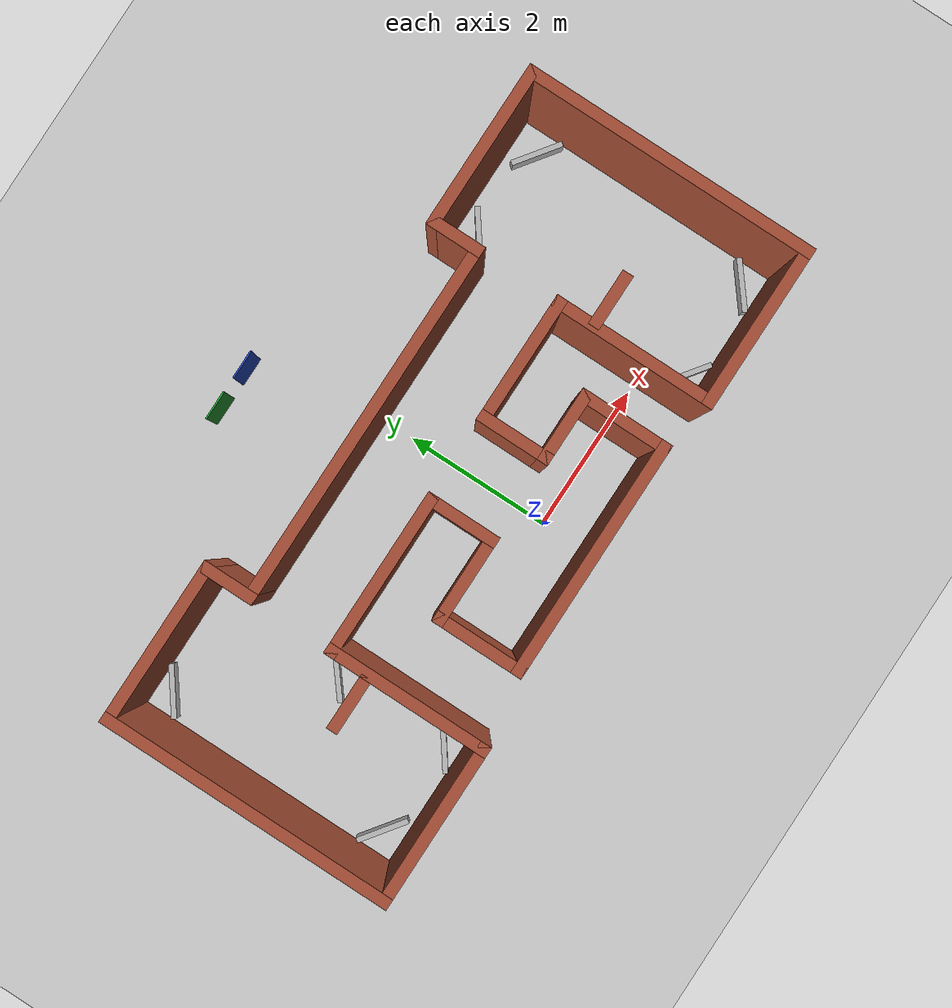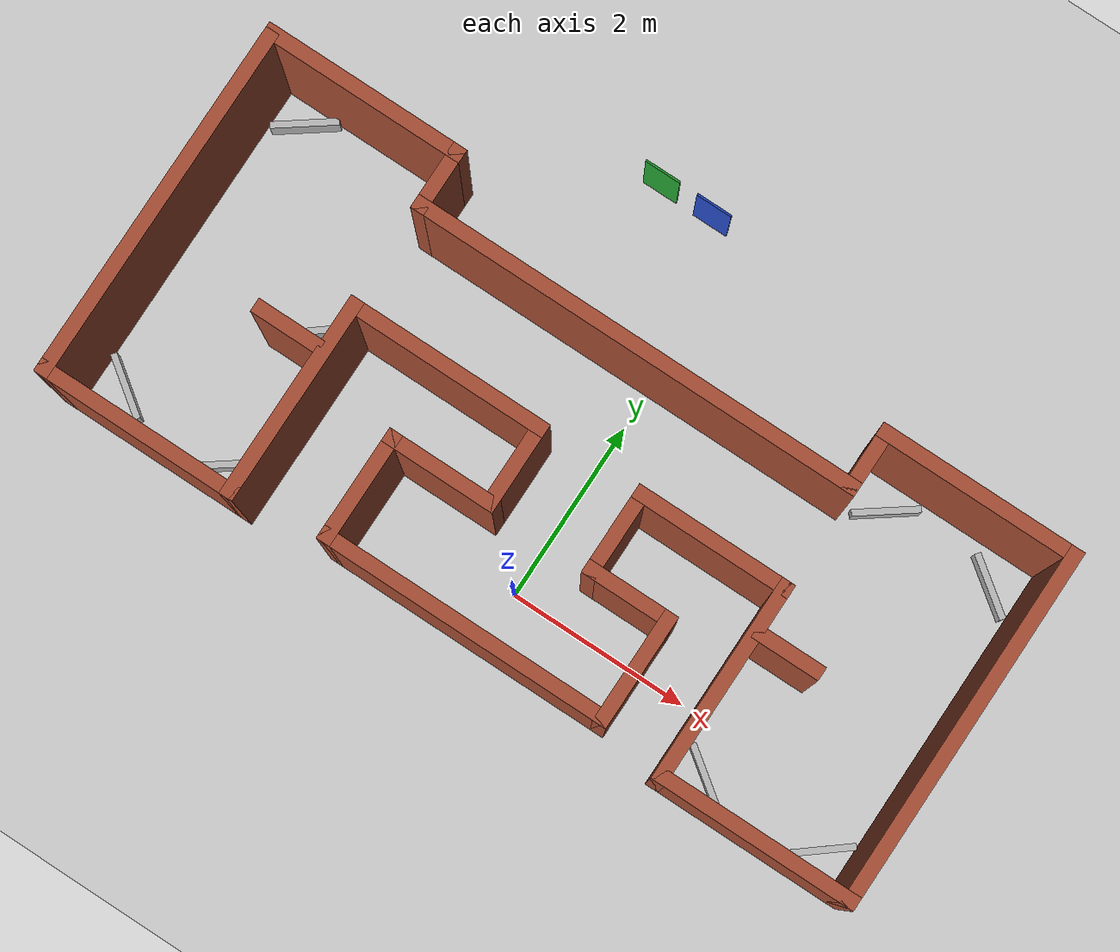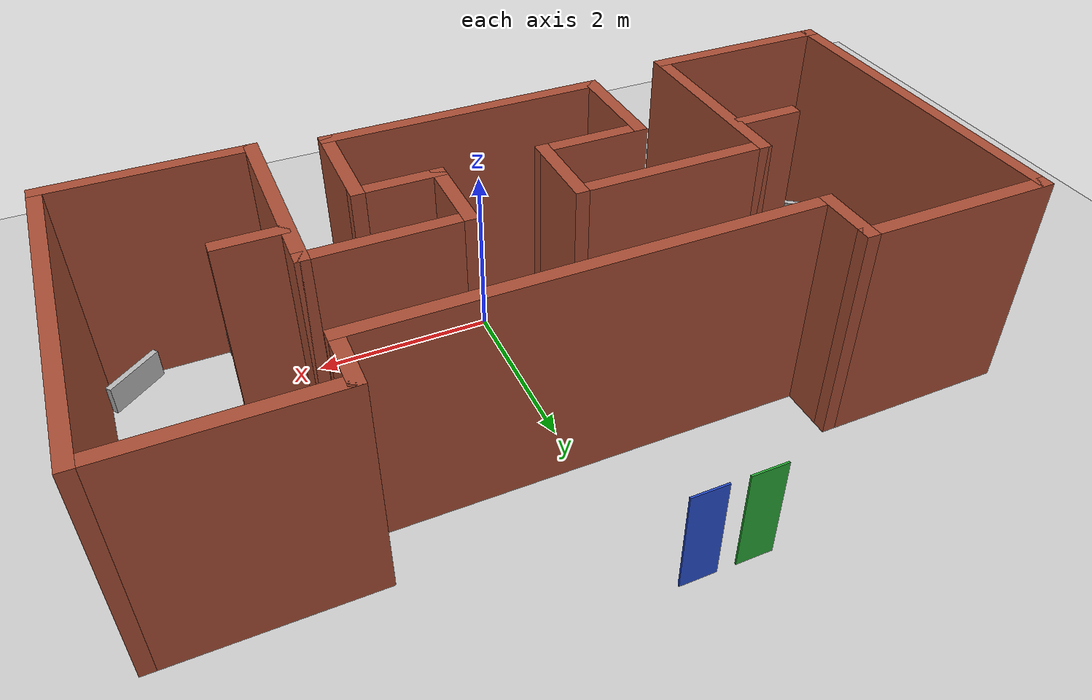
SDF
<sdf version="1.6">
 <world name="default">
  <light name="sun" type="directional">
   <pose>0 0 10 0 -0 0</pose>
   <diffuse>0.8 0.8 0.8 1</diffuse>
   <specular>0.2 0.2 0.2 1</specular>
   <attenuation>
    <range>1000</range>
    <constant>0.9</constant>
    <linear>0.01</linear>
    <quadratic>0.001</quadratic>
   </attenuation>
   <direction>-0.5 0.1 -0.9</direction>
  </light>
  <model name="ground_plane">
   <static>1</static>
   <link name="link">
    <collision name="collision">
     <geometry><plane><normal>0 0 1</normal><size>100 100</size></plane></geometry>
     <surface>
      <contact><collide_bitmask>65535</collide_bitmask></contact>
      <friction><ode><mu>100</mu><mu2>50</mu2></ode></friction>
     </surface>
    </collision>
    <visual name="visual">
     <cast_shadows>0</cast_shadows>
     <geometry><plane><normal>0 0 1</normal><size>100 100</size></plane></geometry>
     <material>
      <script><uri>file://media/materials/scripts/gazebo.material</uri><name>Gazebo/Grey</name></script>
     </material>
    </visual>
   </link>
  </model>
  <gravity>0 0 -9.8</gravity>
  <magnetic_field>6e-06 2.3e-05 -4.2e-05</magnetic_field>
  <atmosphere type="adiabatic"/>
  <physics name="default_physics" default="0" type="ode">
   <max_step_size>0.001</max_step_size>
   <real_time_factor>1</real_time_factor>
   <real_time_update_rate>1000</real_time_update_rate>
  </physics>
  <scene><ambient>0.4 0.4 0.4 1</ambient><background>0.7 0.7 0.7 1</background><shadows>1</shadows></scene>
  <audio><device>default</device></audio>
  <spherical_coordinates>
   <surface_model>EARTH_WGS84</surface_model>
   <latitude_deg>0</latitude_deg>
   <longitude_deg>0</longitude_deg>
   <elevation>0</elevation>
   <heading_deg>0</heading_deg>
  </spherical_coordinates>
  <model name="pre_third_test">
   <pose>-0.23164 1.14808 0 0 -0 0</pose>
   <link name="Wall_1">
    <collision name="Wall_1_Collision">
     <geometry><box><size>1.25 0.15 2.5</size></box></geometry>
     <pose>0 0 1.25 0 -0 0</pose>
    </collision>
    <visual name="Wall_1_Visual">
     <pose>0 0 1.25 0 -0 0</pose>
     <geometry><box><size>1.25 0.15 2.5</size></box></geometry>
     <material>
      <script><uri>file://media/materials/scripts/gazebo.material</uri><name>Gazebo/Bricks</name></script>
      <ambient>1 1 1 1</ambient>
     </material>
     <meta><layer>0</layer></meta>
    </visual>
    <pose>1.675 -1.225 0 0 -0 1.5708</pose>
   </link>
   <link name="Wall_10">
    <collision name="Wall_10_Collision">
     <geometry><box><size>5 0.15 2.5</size></box></geometry>
     <pose>0 0 1.25 0 -0 0</pose>
    </collision>
    <visual name="Wall_10_Visual">
     <pose>0 0 1.25 0 -0 0</pose>
     <geometry><box><size>5 0.15 2.5</size></box></geometry>
     <material>
      <script><uri>file://media/materials/scripts/gazebo.material</uri><name>Gazebo/Bricks</name></script>
      <ambient>1 1 1 1</ambient>
     </material>
     <meta><layer>0</layer></meta>
    </visual>
    <pose>0 1.325 0 0 -0 3.14159</pose>
   </link>
   <link name="Wall_11">
    <collision name="Wall_11_Collision">
     <geometry><box><size>0.75 0.15 2.5</size></box></geometry>
     <pose>0 0 1.25 0 -0 0</pose>
    </collision>
    <visual name="Wall_11_Visual">
     <pose>0 0 1.25 0 -0 0</pose>
     <geometry><box><size>0.75 0.15 2.5</size></box></geometry>
     <material>
      <script><uri>file://media/materials/scripts/gazebo.material</uri><name>Gazebo/Bricks</name></script>
      <ambient>1 1 1 1</ambient>
     </material>
     <meta><layer>0</layer></meta>
    </visual>
    <pose>-2.425 1.625 0 0 -0 1.5708</pose>
   </link>
   <link name="Wall_12">
    <collision name="Wall_12_Collision">
     <geometry><box><size>2.25 0.15 2.5</size></box></geometry>
     <pose>0 0 1.25 0 -0 0</pose>
    </collision>
    <visual name="Wall_12_Visual">
     <pose>0 0 1.25 0 -0 0</pose>
     <geometry><box><size>2.25 0.15 2.5</size></box></geometry>
     <material>
      <script><uri>file://media/materials/scripts/gazebo.material</uri><name>Gazebo/Bricks</name></script>
      <ambient>1 1 1 1</ambient>
     </material>
     <meta><layer>0</layer></meta>
    </visual>
    <pose>-3.475 1.925 0 0 -0 3.14159</pose>
   </link>
   <link name="Wall_13">
    <collision name="Wall_13_Collision">
     <geometry><box><size>4 0.15 2.5</size></box></geometry>
     <pose>0 0 1.25 0 -0 0</pose>
    </collision>
    <visual name="Wall_13_Visual">
     <pose>0 0 1.25 0 -0 0</pose>
     <geometry><box><size>4 0.15 2.5</size></box></geometry>
     <material>
      <script><uri>file://media/materials/scripts/gazebo.material</uri><name>Gazebo/Bricks</name></script>
      <ambient>1 1 1 1</ambient>
     </material>
     <meta><layer>0</layer></meta>
    </visual>
    <pose>-4.525 0 0 0 -0 -1.5708</pose>
   </link>
   <link name="Wall_14">
    <collision name="Wall_14_Collision">
     <geometry><box><size>2.25 0.15 2.5</size></box></geometry>
     <pose>0 0 1.25 0 -0 0</pose>
    </collision>
    <visual name="Wall_14_Visual">
     <pose>0 0 1.25 0 -0 0</pose>
     <geometry><box><size>2.25 0.15 2.5</size></box></geometry>
     <material>
      <script><uri>file://media/materials/scripts/gazebo.material</uri><name>Gazebo/Bricks</name></script>
      <ambient>1 1 1 1</ambient>
     </material>
     <meta><layer>0</layer></meta>
    </visual>
    <pose>-3.475 -1.925 0 0 -0 0</pose>
   </link>
   <link name="Wall_15">
    <collision name="Wall_15_Collision">
     <geometry><box><size>2.25 0.15 2.5</size></box></geometry>
     <pose>0 0 1.25 0 -0 0</pose>
    </collision>
    <visual name="Wall_15_Visual">
     <pose>0 0 1.25 0 -0 0</pose>
     <geometry><box><size>2.25 0.15 2.5</size></box></geometry>
     <material>
      <script><uri>file://media/materials/scripts/gazebo.material</uri><name>Gazebo/Bricks</name></script>
      <ambient>1 1 1 1</ambient>
     </material>
     <meta><layer>0</layer></meta>
    </visual>
    <pose>-2.425 -0.875 0 0 -0 1.5708</pose>
   </link>
   <link name="Wall_16">
    <collision name="Wall_16_Collision">
     <geometry><box><size>2.25 0.15 2.5</size></box></geometry>
     <pose>0 0 1.25 0 -0 0</pose>
    </collision>
    <visual name="Wall_16_Visual">
     <pose>0 0 1.25 0 -0 0</pose>
     <geometry><box><size>2.25 0.15 2.5</size></box></geometry>
     <material>
      <script><uri>file://media/materials/scripts/gazebo.material</uri><name>Gazebo/Bricks</name></script>
      <ambient>1 1 1 1</ambient>
     </material>
     <meta><layer>0</layer></meta>
    </visual>
    <pose>-1.375 0.175 0 0 -0 0</pose>
   </link>
   <link name="Wall_17">
    <collision name="Wall_17_Collision">
     <geometry><box><size>1 0.15 2.5</size></box></geometry>
     <pose>0 0 1.25 0 -0 0</pose>
    </collision>
    <visual name="Wall_17_Visual">
     <pose>0 0 1.25 0 -0 0</pose>
     <geometry><box><size>1 0.15 2.5</size></box></geometry>
     <material>
      <script><uri>file://media/materials/scripts/gazebo.material</uri><name>Gazebo/Bricks</name></script>
      <ambient>1 1 1 1</ambient>
     </material>
     <meta><layer>0</layer></meta>
    </visual>
    <pose>-0.325 -0.25 0 0 -0 -1.5708</pose>
   </link>
   <link name="Wall_18">
    <collision name="Wall_18_Collision">
     <geometry><box><size>1.25 0.15 2.5</size></box></geometry>
     <pose>0 0 1.25 0 -0 0</pose>
    </collision>
    <visual name="Wall_18_Visual">
     <pose>0 0 1.25 0 -0 0</pose>
     <geometry><box><size>1.25 0.15 2.5</size></box></geometry>
     <material>
      <script><uri>file://media/materials/scripts/gazebo.material</uri><name>Gazebo/Bricks</name></script>
      <ambient>1 1 1 1</ambient>
     </material>
     <meta><layer>0</layer></meta>
    </visual>
    <pose>-0.875 -0.675 0 0 -0 3.14159</pose>
   </link>
   <link name="Wall_19">
    <collision name="Wall_19_Collision">
     <geometry><box><size>1.25 0.15 2.5</size></box></geometry>
     <pose>0 0 1.25 0 -0 0</pose>
    </collision>
    <visual name="Wall_19_Visual">
     <pose>0 0 1.25 0 -0 0</pose>
     <geometry><box><size>1.25 0.15 2.5</size></box></geometry>
     <material>
      <script><uri>file://media/materials/scripts/gazebo.material</uri><name>Gazebo/Bricks</name></script>
      <ambient>1 1 1 1</ambient>
     </material>
     <meta><layer>0</layer></meta>
    </visual>
    <pose>-1.425 -1.225 0 0 -0 -1.5708</pose>
   </link>
   <link name="Wall_2">
    <collision name="Wall_2_Collision">
     <geometry><box><size>1 0.15 2.5</size></box></geometry>
     <pose>0 0 1.25 0 -0 0</pose>
    </collision>
    <visual name="Wall_2_Visual">
     <pose>0 0 1.25 0 -0 0</pose>
     <geometry><box><size>1 0.15 2.5</size></box></geometry>
     <material>
      <script><uri>file://media/materials/scripts/gazebo.material</uri><name>Gazebo/Bricks</name></script>
      <ambient>1 1 1 1</ambient>
     </material>
     <meta><layer>0</layer></meta>
    </visual>
    <pose>1.25 -0.675 0 0 -0 3.14159</pose>
   </link>
   <link name="Wall_21">
    <collision name="Wall_21_Collision">
     <geometry><box><size>3.25 0.15 2.5</size></box></geometry>
     <pose>0 0 1.25 0 -0 0</pose>
    </collision>
    <visual name="Wall_21_Visual">
     <pose>0 0 1.25 0 -0 0</pose>
     <geometry><box><size>3.25 0.15 2.5</size></box></geometry>
     <material>
      <script><uri>file://media/materials/scripts/gazebo.material</uri><name>Gazebo/Bricks</name></script>
      <ambient>1 1 1 1</ambient>
     </material>
     <meta><layer>0</layer></meta>
    </visual>
    <pose>0.125 -1.775 0 0 -0 0</pose>
   </link>
   <link name="Wall_23">
    <collision name="Wall_23_Collision">
     <geometry><box><size>0.75 0.15 2.5</size></box></geometry>
     <pose>0 0 1.25 0 -0 0</pose>
    </collision>
    <visual name="Wall_23_Visual">
     <pose>0 0 1.25 0 -0 0</pose>
     <geometry><box><size>0.75 0.15 2.5</size></box></geometry>
     <material>
      <script><uri>file://media/materials/scripts/gazebo.material</uri><name>Gazebo/Bricks</name></script>
      <ambient>1 1 1 1</ambient>
     </material>
     <meta><layer>0</layer></meta>
    </visual>
    <pose>-2.83461 -0.332543 0 0 -0 3.14159</pose>
   </link>
   <link name="Wall_25">
    <collision name="Wall_25_Collision">
     <geometry><box><size>0.75 0.15 2.5</size></box></geometry>
     <pose>0 0 1.25 0 -0 0</pose>
    </collision>
    <visual name="Wall_25_Visual">
     <pose>0 0 1.25 0 -0 0</pose>
     <geometry><box><size>0.75 0.15 2.5</size></box></geometry>
     <material>
      <script><uri>file://media/materials/scripts/gazebo.material</uri><name>Gazebo/Bricks</name></script>
      <ambient>1 1 1 1</ambient>
     </material>
     <meta><layer>0</layer></meta>
    </visual>
    <pose>2.78473 -0.309413 0 0 -0 0</pose>
   </link>
   <link name="Wall_3">
    <collision name="Wall_3_Collision">
     <geometry><box><size>1 0.15 2.5</size></box></geometry>
     <pose>0 0 1.25 0 -0 0</pose>
    </collision>
    <visual name="Wall_3_Visual">
     <pose>0 0 1.25 0 -0 0</pose>
     <geometry><box><size>1 0.15 2.5</size></box></geometry>
     <material>
      <script><uri>file://media/materials/scripts/gazebo.material</uri><name>Gazebo/Bricks</name></script>
      <ambient>1 1 1 1</ambient>
     </material>
     <meta><layer>0</layer></meta>
    </visual>
    <pose>0.825 -0.25 0 0 -0 1.5708</pose>
   </link>
   <link name="Wall_4">
    <collision name="Wall_4_Collision">
     <geometry><box><size>1.75 0.15 2.5</size></box></geometry>
     <pose>0 0 1.25 0 -0 0</pose>
    </collision>
    <visual name="Wall_4_Visual">
     <pose>0 0 1.25 0 -0 0</pose>
     <geometry><box><size>1.75 0.15 2.5</size></box></geometry>
     <material>
      <script><uri>file://media/materials/scripts/gazebo.material</uri><name>Gazebo/Bricks</name></script>
      <ambient>1 1 1 1</ambient>
     </material>
     <meta><layer>0</layer></meta>
    </visual>
    <pose>1.625 0.175 0 0 -0 0</pose>
   </link>
   <link name="Wall_5">
    <collision name="Wall_5_Collision">
     <geometry><box><size>2.25 0.15 2.5</size></box></geometry>
     <pose>0 0 1.25 0 -0 0</pose>
    </collision>
    <visual name="Wall_5_Visual">
     <pose>0 0 1.25 0 -0 0</pose>
     <geometry><box><size>2.25 0.15 2.5</size></box></geometry>
     <material>
      <script><uri>file://media/materials/scripts/gazebo.material</uri><name>Gazebo/Bricks</name></script>
      <ambient>1 1 1 1</ambient>
     </material>
     <meta><layer>0</layer></meta>
    </visual>
    <pose>2.425 -0.875 0 0 -0 -1.5708</pose>
   </link>
   <link name="Wall_6">
    <collision name="Wall_6_Collision">
     <geometry><box><size>2.25 0.15 2.5</size></box></geometry>
     <pose>0 0 1.25 0 -0 0</pose>
    </collision>
    <visual name="Wall_6_Visual">
     <pose>0 0 1.25 0 -0 0</pose>
     <geometry><box><size>2.25 0.15 2.5</size></box></geometry>
     <material>
      <script><uri>file://media/materials/scripts/gazebo.material</uri><name>Gazebo/Bricks</name></script>
      <ambient>1 1 1 1</ambient>
     </material>
     <meta><layer>0</layer></meta>
    </visual>
    <pose>3.475 -1.925 0 0 -0 0</pose>
   </link>
   <link name="Wall_7">
    <collision name="Wall_7_Collision">
     <geometry><box><size>4 0.15 2.5</size></box></geometry>
     <pose>0 0 1.25 0 -0 0</pose>
    </collision>
    <visual name="Wall_7_Visual">
     <pose>0 0 1.25 0 -0 0</pose>
     <geometry><box><size>4 0.15 2.5</size></box></geometry>
     <material>
      <script><uri>file://media/materials/scripts/gazebo.material</uri><name>Gazebo/Bricks</name></script>
      <ambient>1 1 1 1</ambient>
     </material>
     <meta><layer>0</layer></meta>
    </visual>
    <pose>4.525 0 0 0 -0 1.5708</pose>
   </link>
   <link name="Wall_8">
    <collision name="Wall_8_Collision">
     <geometry><box><size>2.25 0.15 2.5</size></box></geometry>
     <pose>0 0 1.25 0 -0 0</pose>
    </collision>
    <visual name="Wall_8_Visual">
     <pose>0 0 1.25 0 -0 0</pose>
     <geometry><box><size>2.25 0.15 2.5</size></box></geometry>
     <material>
      <script><uri>file://media/materials/scripts/gazebo.material</uri><name>Gazebo/Bricks</name></script>
      <ambient>1 1 1 1</ambient>
     </material>
     <meta><layer>0</layer></meta>
    </visual>
    <pose>3.475 1.925 0 0 -0 3.14159</pose>
   </link>
   <link name="Wall_9">
    <collision name="Wall_9_Collision">
     <geometry><box><size>0.75 0.15 2.5</size></box></geometry>
     <pose>0 0 1.25 0 -0 0</pose>
    </collision>
    <visual name="Wall_9_Visual">
     <pose>0 0 1.25 0 -0 0</pose>
     <geometry><box><size>0.75 0.15 2.5</size></box></geometry>
     <material>
      <script><uri>file://media/materials/scripts/gazebo.material</uri><name>Gazebo/Bricks</name></script>
      <ambient>1 1 1 1</ambient>
     </material>
     <meta><layer>0</layer></meta>
    </visual>
    <pose>2.425 1.625 0 0 -0 -1.5708</pose>
   </link>
   <static>1</static>
  </model>
  <model name="green_box">
   <static>1</static>
   <link name="box">
    <pose>0 0 0.6 0 -0 0</pose>
    <collision name="collision"><geometry><box><size>0.4 0.02 1.2</size></box></geometry></collision>
    <visual name="visual">
     <geometry><box><size>0.4 0.02 1.2</size></box></geometry>
     <material>
      <script>
       <uri>model://green_box/materials/scripts</uri>
       <uri>model://green_box/materials/textures</uri>
       <name>green_box</name>
      </script>
     </material>
    </visual>
   </link>
   <pose>-1.02075 4.2099 0 0 -0 0</pose>
  </model>
  <model name="blue_box">
   <static>1</static>
   <link name="box">
    <pose>0 0 0.6 0 -0 0</pose>
    <collision name="collision"><geometry><box><size>0.4 0.02 1.2</size></box></geometry></collision>
    <visual name="visual">
     <geometry><box><size>0.4 0.02 1.2</size></box></geometry>
     <material>
      <script>
       <uri>model://blue_box/materials/scripts</uri>
       <uri>model://blue_box/materials/textures</uri>
       <name>blue_box</name>
      </script>
     </material>
    </visual>
   </link>
   <pose>-0.417842 4.20596 0 0 -0 0</pose>
  </model>
  <model name="bicycle_picture">
   <static>1</static>
   <link name="box">
    <collision name="collision"><geometry><box><size>0.55 0.075 0.2</size></box></geometry></collision>
    <visual name="visual">
     <geometry><box><size>0.7 0.07 0.35</size></box></geometry>
     <material>
      <script>
       <uri>model://bicycle_picture/materials/scripts</uri>
       <uri>model://bicycle_picture/materials/textures</uri>
       <name>bicycle_picture</name>
      </script>
     </material>
    </visual>
   </link>
   <pose>-4.34885 2.78076 0.175476 0 -0 0.632853</pose>
  </model>
  <model name="boat_picture">
   <static>1</static>
   <link name="box">
    <collision name="collision"><geometry><box><size>0.55 0.075 0.2</size></box></geometry></collision>
    <visual name="visual">
     <geometry><box><size>0.7 0.07 0.35</size></box></geometry>
     <material>
      <script>
       <uri>model://boat_picture/materials/scripts</uri>
       <uri>model://boat_picture/materials/textures</uri>
       <name>boat_picture</name>
      </script>
     </material>
    </visual>
   </link>
   <pose>-3.04089 1.14641 0.152848 0 -0 0.679684</pose>
  </model>
  <model name="bicycle_picture_clone">
   <static>1</static>
   <link name="box">
    <collision name="collision"><geometry><box><size>0.55 0.075 0.2</size></box></geometry></collision>
    <visual name="visual">
     <geometry><box><size>0.7 0.07 0.35</size></box></geometry>
     <material>
      <script>
       <uri>model://bicycle_picture/materials/scripts</uri>
       <uri>model://bicycle_picture/materials/textures</uri>
       <name>bicycle_picture</name>
      </script>
     </material>
    </visual>
   </link>
   <pose>-3.05274 -0.474216 0.175476 0 -0 0.632853</pose>
  </model>
  <model name="bicycle_picture_clone_0">
   <static>1</static>
   <link name="box">
    <collision name="collision"><geometry><box><size>0.55 0.075 0.2</size></box></geometry></collision>
    <visual name="visual">
     <geometry><box><size>0.7 0.07 0.35</size></box></geometry>
     <material>
      <script>
       <uri>model://bicycle_picture/materials/scripts</uri>
       <uri>model://bicycle_picture/materials/textures</uri>
       <name>bicycle_picture</name>
      </script>
     </material>
    </visual>
   </link>
   <pose>2.63507 2.71393 0.175476 0 -0 0.632853</pose>
  </model>
  <model name="boat_picture_clone">
   <static>1</static>
   <link name="box">
    <collision name="collision"><geometry><box><size>0.55 0.075 0.2</size></box></geometry></collision>
    <visual name="visual">
     <geometry><box><size>0.7 0.07 0.35</size></box></geometry>
     <material>
      <script>
       <uri>model://boat_picture/materials/scripts</uri>
       <uri>model://boat_picture/materials/textures</uri>
       <name>boat_picture</name>
      </script>
     </material>
    </visual>
   </link>
   <pose>-4.36935 -0.406946 0.152848 0 0 -0.631939</pose>
  </model>
  <model name="boat_picture_clone_0">
   <static>1</static>
   <link name="box">
    <collision name="collision"><geometry><box><size>0.55 0.075 0.2</size></box></geometry></collision>
    <visual name="visual">
     <geometry><box><size>0.7 0.07 0.35</size></box></geometry>
     <material>
      <script>
       <uri>model://boat_picture/materials/scripts</uri>
       <uri>model://boat_picture/materials/textures</uri>
       <name>boat_picture</name>
      </script>
     </material>
    </visual>
   </link>
   <pose>3.92071 -0.449531 0.152848 0 -0 0.679684</pose>
  </model>
  <model name="boat_picture_clone_clone">
   <static>1</static>
   <link name="box">
    <collision name="collision"><geometry><box><size>0.55 0.075 0.2</size></box></geometry></collision>
    <visual name="visual">
     <geometry><box><size>0.7 0.07 0.35</size></box></geometry>
     <material>
      <script>
       <uri>model://boat_picture/materials/scripts</uri>
       <uri>model://boat_picture/materials/textures</uri>
       <name>boat_picture</name>
      </script>
     </material>
    </visual>
   </link>
   <pose>3.90022 2.65314 0.152848 0 0 -0.631939</pose>
  </model>
  <model name="boat_picture_clone_clone_0">
   <static>1</static>
   <link name="box">
    <collision name="collision"><geometry><box><size>0.55 0.075 0.2</size></box></geometry></collision>
    <visual name="visual">
     <geometry><box><size>0.7 0.07 0.35</size></box></geometry>
     <material>
      <script>
       <uri>model://boat_picture/materials/scripts</uri>
       <uri>model://boat_picture/materials/textures</uri>
       <name>boat_picture</name>
      </script>
     </material>
    </visual>
   </link>
   <pose>2.57277 -0.474461 0.152848 0 0 -0.631939</pose>
  </model>
  <light name="user_spot_light_0" type="spot">
   <pose>2.63615 2.72151 1 0 -0 0</pose>
   <diffuse>0.5 0.5 0.5 1</diffuse>
   <specular>0.1 0.1 0.1 1</specular>
   <direction>0 0 -1</direction>
   <attenuation>
    <range>20</range>
    <constant>0.5</constant>
    <linear>0.01</linear>
    <quadratic>0.001</quadratic>
   </attenuation>
   <cast_shadows>0</cast_shadows>
   <spot><inner_angle>0.6</inner_angle><outer_angle>1</outer_angle><falloff>1</falloff></spot>
  </light>
  <light name="user_spot_light_1" type="spot">
   <pose>2.78201 -0.438509 1 0 -0 0</pose>
   <diffuse>0.5 0.5 0.5 1</diffuse>
   <specular>0.1 0.1 0.1 1</specular>
   <direction>0 0 -1</direction>
   <attenuation>
    <range>20</range>
    <constant>0.5</constant>
    <linear>0.01</linear>
    <quadratic>0.001</quadratic>
   </attenuation>
   <cast_shadows>0</cast_shadows>
   <spot><inner_angle>0.6</inner_angle><outer_angle>1</outer_angle><falloff>1</falloff></spot>
  </light>
  <light name="user_spot_light_2" type="spot">
   <pose>3.92428 -0.387259 1 0 -0 0</pose>
   <diffuse>0.5 0.5 0.5 1</diffuse>
   <specular>0.1 0.1 0.1 1</specular>
   <direction>0 0 -1</direction>
   <attenuation>
    <range>20</range>
    <constant>0.5</constant>
    <linear>0.01</linear>
    <quadratic>0.001</quadratic>
   </attenuation>
   <cast_shadows>0</cast_shadows>
   <spot><inner_angle>0.6</inner_angle><outer_angle>1</outer_angle><falloff>1</falloff></spot>
  </light>
  <light name="user_spot_light_3" type="spot">
   <pose>3.9021 2.6352 1 0 -0 0</pose>
   <diffuse>0.5 0.5 0.5 1</diffuse>
   <specular>0.1 0.1 0.1 1</specular>
   <direction>0 0 -1</direction>
   <attenuation>
    <range>20</range>
    <constant>0.5</constant>
    <linear>0.01</linear>
    <quadratic>0.001</quadratic>
   </attenuation>
   <cast_shadows>0</cast_shadows>
   <spot><inner_angle>0.6</inner_angle><outer_angle>1</outer_angle><falloff>1</falloff></spot>
  </light>
  <light name="user_spot_light_4" type="spot">
   <pose>-4.30755 2.71888 1 0 -0 0</pose>
   <diffuse>0.5 0.5 0.5 1</diffuse>
   <specular>0.1 0.1 0.1 1</specular>
   <direction>0 0 -1</direction>
   <attenuation>
    <range>20</range>
    <constant>0.5</constant>
    <linear>0.01</linear>
    <quadratic>0.001</quadratic>
   </attenuation>
   <cast_shadows>0</cast_shadows>
   <spot><inner_angle>0.6</inner_angle><outer_angle>1</outer_angle><falloff>1</falloff></spot>
  </light>
  <light name="user_spot_light_5" type="spot">
   <pose>-3.07973 1.28279 1 0 -0 0</pose>
   <diffuse>0.5 0.5 0.5 1</diffuse>
   <specular>0.1 0.1 0.1 1</specular>
   <direction>0 0 -1</direction>
   <attenuation>
    <range>20</range>
    <constant>0.5</constant>
    <linear>0.01</linear>
    <quadratic>0.001</quadratic>
   </attenuation>
   <cast_shadows>0</cast_shadows>
   <spot><inner_angle>0.6</inner_angle><outer_angle>1</outer_angle><falloff>1</falloff></spot>
  </light>
  <light name="user_spot_light_6" type="spot">
   <pose>-4.31183 -0.38492 1 0 -0 0</pose>
   <diffuse>0.5 0.5 0.5 1</diffuse>
   <specular>0.1 0.1 0.1 1</specular>
   <direction>0 0 -1</direction>
   <attenuation>
    <range>20</range>
    <constant>0.5</constant>
    <linear>0.01</linear>
    <quadratic>0.001</quadratic>
   </attenuation>
   <cast_shadows>0</cast_shadows>
   <spot><inner_angle>0.6</inner_angle><outer_angle>1</outer_angle><falloff>1</falloff></spot>
  </light>
  <light name="user_spot_light_7" type="spot">
   <pose>-3.21606 -0.474373 1 0 -0 0</pose>
   <diffuse>0.5 0.5 0.5 1</diffuse>
   <specular>0.1 0.1 0.1 1</specular>
   <direction>0 0 -1</direction>
   <attenuation>
    <range>20</range>
    <constant>0.5</constant>
    <linear>0.01</linear>
    <quadratic>0.001</quadratic>
   </attenuation>
   <cast_shadows>0</cast_shadows>
   <spot><inner_angle>0.6</inner_angle><outer_angle>1</outer_angle><falloff>1</falloff></spot>
  </light>
 </world>
</sdf>
